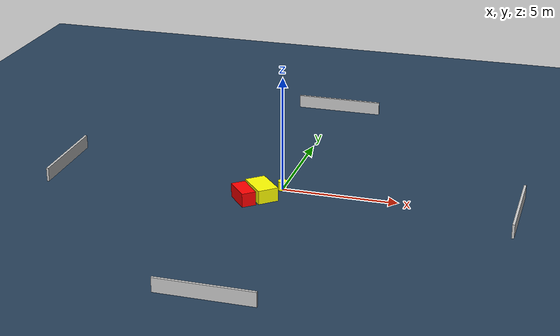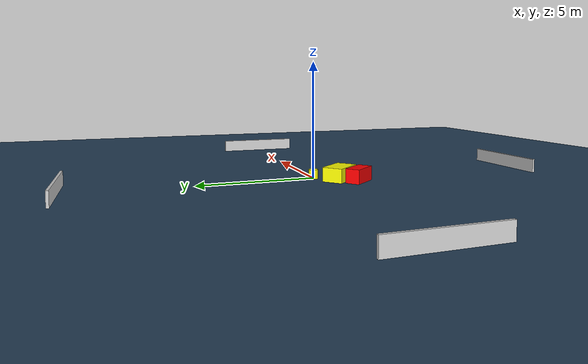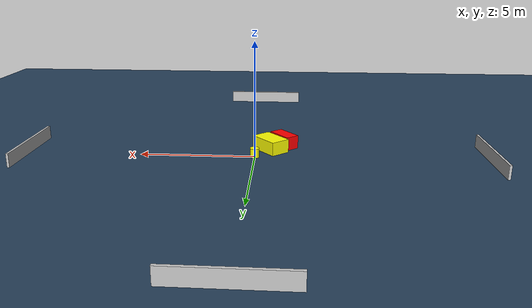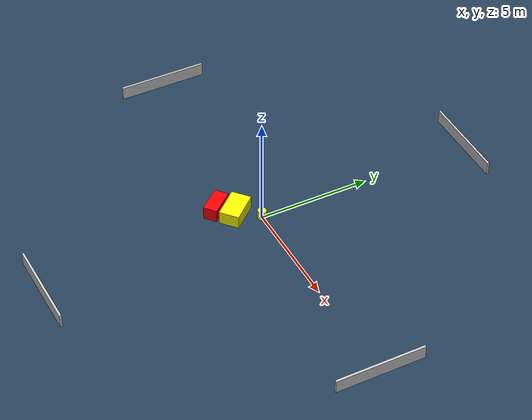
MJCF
<?xml version="1.0" ?>
<mujoco model="generated_environment">
  <option timestep="0.01" integrator="RK4" cone="elliptic"/>
  <default>
    <geom density="1"/>
  </default>
  <asset>
    <texture builtin="gradient" height="3072" name="skybox" rgb1="0.3 0.5 0.7" rgb2="0 0 0" type="skybox" width="512"/>
    <texture builtin="checker" height="300" name="groundplane" rgb1="0.2 0.3 0.4" rgb2="0.1 0.2 0.3" type="2d" width="300"/>
    <material name="groundplane" reflectance="0.2" texrepeat="5 5" texture="groundplane"/>
  </asset>
  <worldbody>
    <light dir="0 0 -1" directional="true" pos="0 0 1.5"/>
    <geom condim="3" friction="0.5 0.005 0.001" material="groundplane" name="floor" pos="0 0 0" size="0 0 0.05" type="plane"/>
    <body name="walls">
      <geom name="wall_1" condim="4" pos="-10.0 0.0 0.3" rgba="0.800000011920929 0.800000011920929 0.800000011920929 1.0" size="0.05 2.0 0.3" type="box"/>
      <geom name="wall_2" condim="4" pos="10.0 0.0 0.3" rgba="0.800000011920929 0.800000011920929 0.800000011920929 1.0" size="0.05 2.0 0.3" type="box"/>
      <geom name="wall_3" condim="4" pos="0.0 -10.0 0.3" rgba="0.800000011920929 0.800000011920929 0.800000011920929 1.0" size="2.0 0.05 0.3" type="box"/>
      <geom name="wall_4" condim="4" pos="0.0 10.0 0.3" rgba="0.800000011920929 0.800000011920929 0.800000011920929 1.0" size="2.0 0.05 0.3" type="box"/>
    </body>
    <body name="robot">
      <joint name="joint_x" type="slide" pos="0 0 0" axis="1 0 0"/>
      <joint name="joint_y" type="slide" pos="0 0 0" axis="0 1 0"/>
      <geom name="robot" type="cylinder" pos="0.0 0.0 0.2" size="0.2 0.2 0.0" mass="5.0" friction="1.0 0.005 0.0001" condim="4" rgba="1.0 1.0 0.0 1.0"/>
    </body>
    <body name="obstacle_1_movable">
      <geom name="obstacle_1_movable" condim="4" pos="-0.6507848157682191 -0.9413727007723894 0.3" euler="0 0 311.14225950400015" friction="0.0 0.005 0.001" rgba="1.0 1.0 0.0 1.0" size="0.7049617826997723 0.44631490014402686 0.3" type="box" mass="0.1"/>
      <joint type="free"/>
    </body>
    <body name="obstacle_2_static">
      <geom name="obstacle_2_static" condim="4" pos="-1.2462994936820166 -1.5601502986187472 0.3" euler="0 0 129.43595027224666" friction="0.0 0.005 0.001" rgba="1.0 0.0 0.0 1.0" size="0.6103134764393658 0.3093552783625413 0.3" type="box"/>
    </body>
  </worldbody>
  <actuator>
    <motor name="actuator_x" joint="joint_x" gear="1" ctrlrange="-1 1"/>
    <motor name="actuator_y" joint="joint_y" gear="1" ctrlrange="-1 1"/>
  </actuator>
</mujoco>
